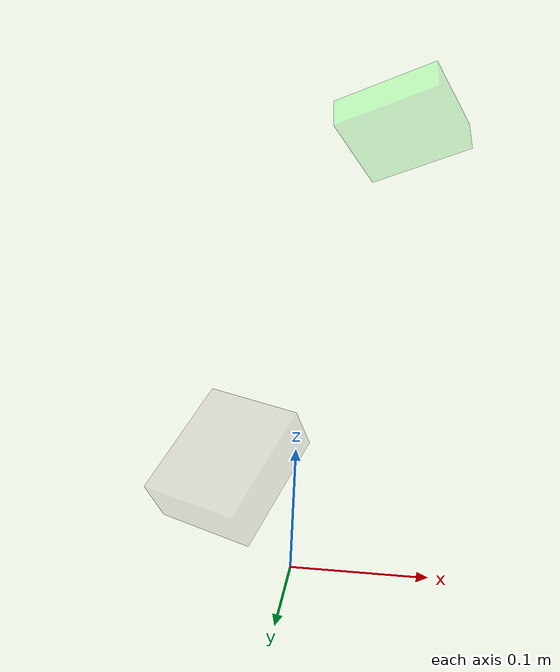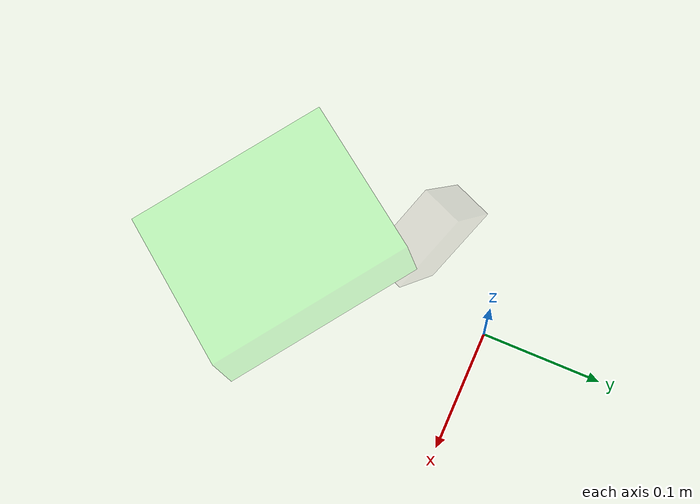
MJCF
<mujoco>
    <worldbody>
        <body name="ycb_body_7" pos="-0.0511325 -0.069513 0.035" quat="0.64891 0.703117 0.0209332 -0.290007" >
            <inertial pos="0 0 0" mass="0.02" diaginertia="0.001 0.001 0.001" />
            <joint name="ycb_joint_7" pos="0 0 0" type="free" damping="0" />
            <geom name="ycb_geom_7_0" type="box" size="0.035 0.042 0.0175" condim="4" group="1" friction="1 0.5 0.01" solref="0.002 1" solimp="0.998 0.998 0.001 0.5 2" rgba="0.538232 0.448989 0.428388 0.2" euler="0 0 -1.11" />
        </body>
        <body name="ycb_body_7_target" pos="0.0795472 -0.100187 0.419694" quat="-0.458867 -0.0467913 -0.0624732 0.88507">
            <inertial pos="0.0838493 -0.0918658 0.419694" quat="-0.458867 -0.0467913 -0.0624732 0.88507" mass="0" diaginertia="0 0 0" />
            <geom name="ycb_geom_7_0_target" type="box" size="0.04368594363 0.05376447966 0.0168923381" contype="0" conaffinity="0" condim="4" group="1" friction="1 0.5 0.01" solref="0.002 1" solimp="0.998 0.998 0.001 0.5 2" rgba="0 1 0 0.125" euler="0 0 -1.11" />
        </body>
    </worldbody>
</mujoco>
